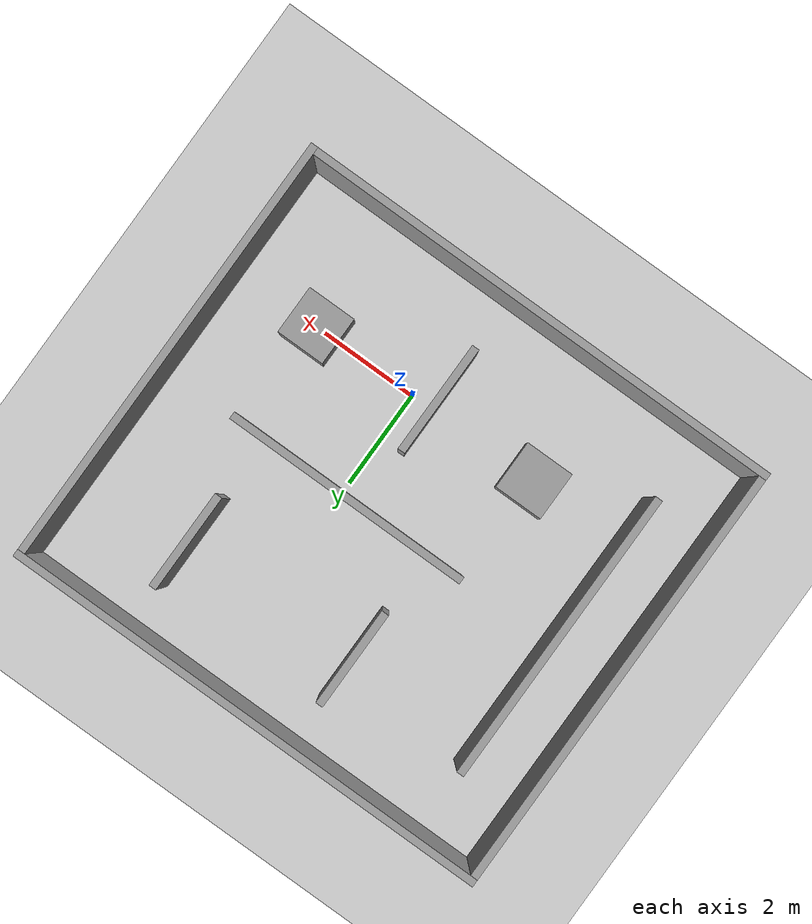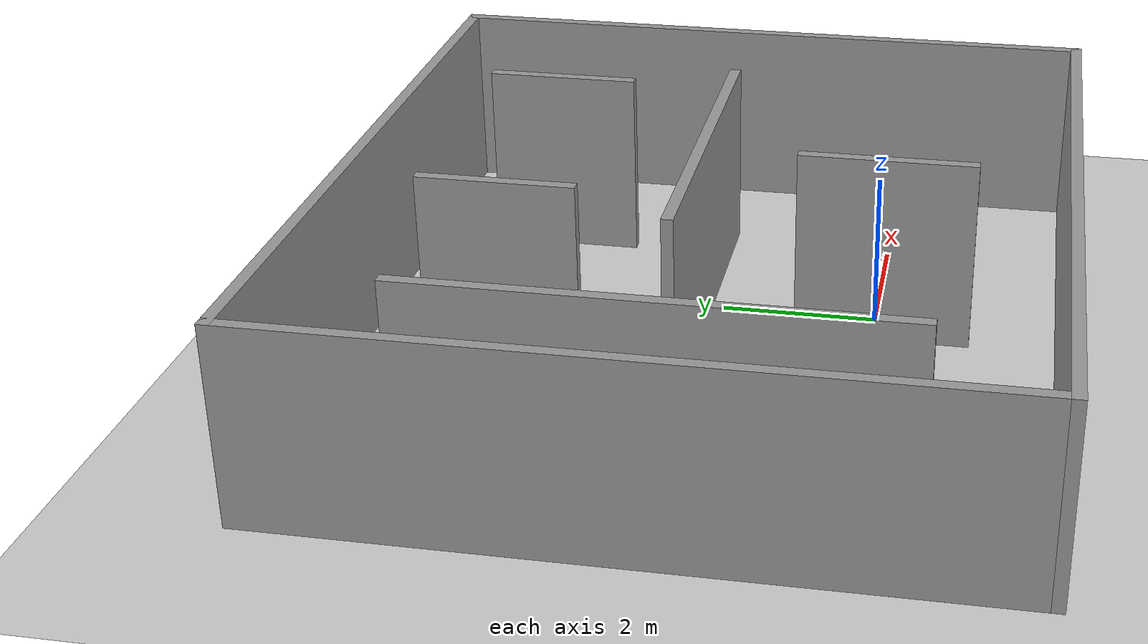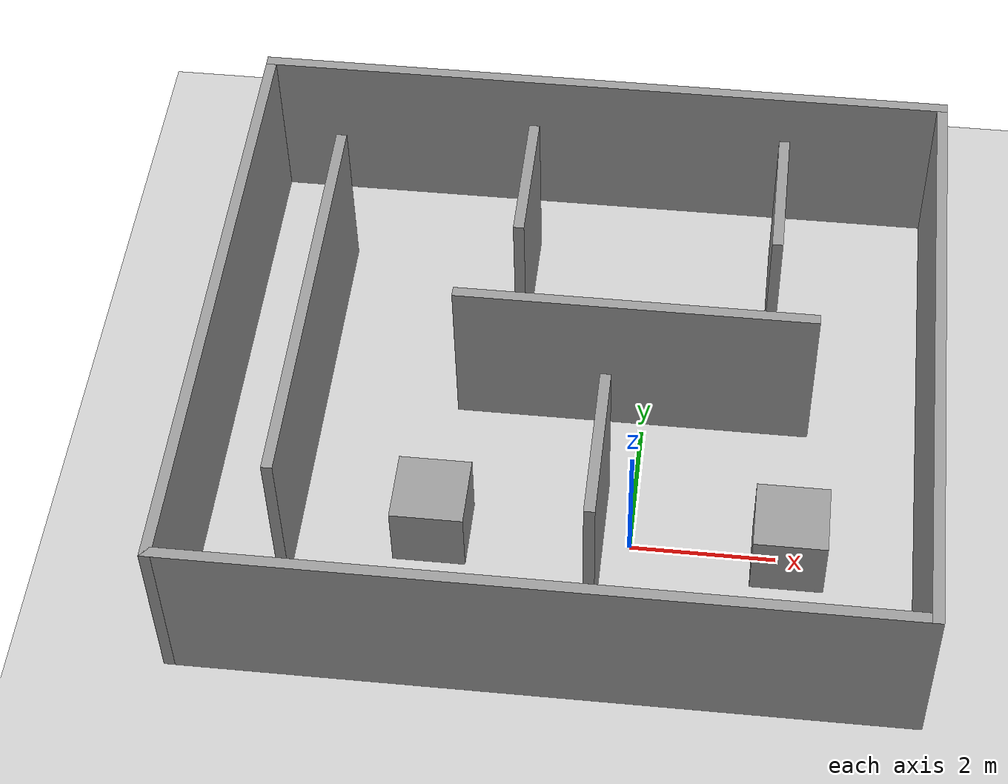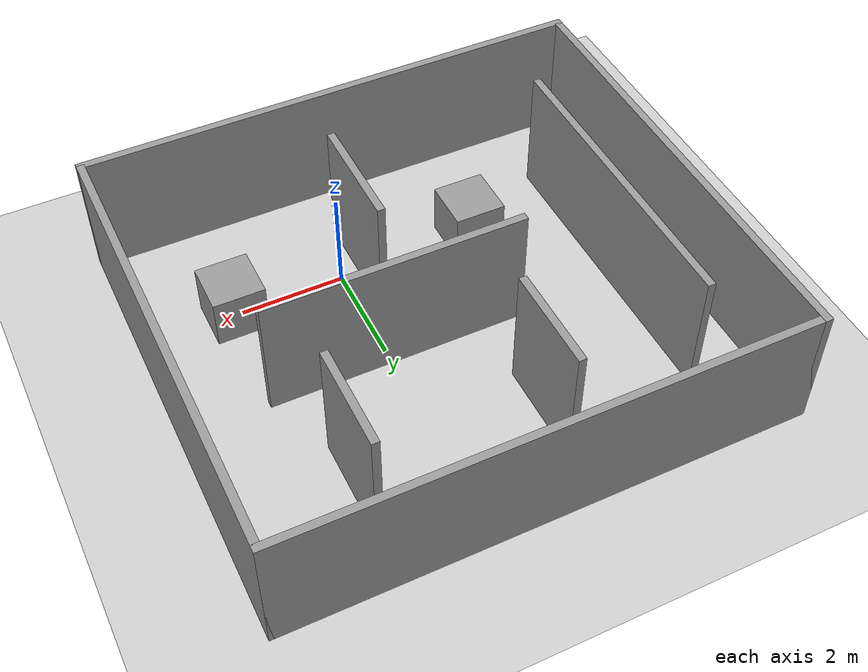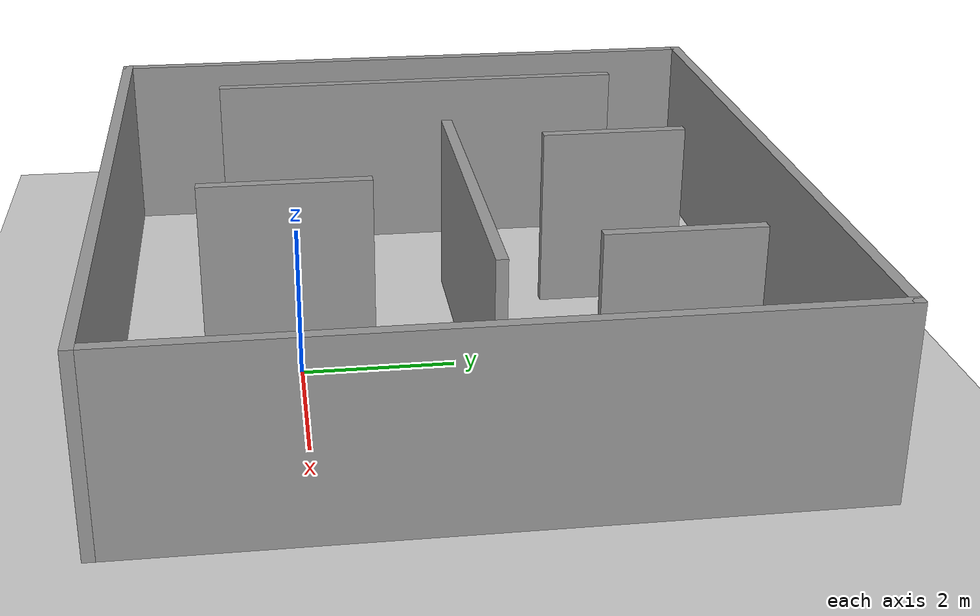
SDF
<sdf version="1.7">
 <world name="default">
  <light name="sun" type="directional">
   <pose>0 0 10 0 -0 0</pose>
   <diffuse>0.8 0.8 0.8 1</diffuse>
   <specular>0.2 0.2 0.2 1</specular>
   <attenuation>
    <range>1000</range>
    <constant>0.9</constant>
    <linear>0.01</linear>
    <quadratic>0.001</quadratic>
   </attenuation>
   <direction>-0.5 0.1 -0.9</direction>
   <spot><inner_angle>0</inner_angle><outer_angle>0</outer_angle><falloff>0</falloff></spot>
  </light>
  <model name="ground_plane">
   <static>1</static>
   <link name="link">
    <collision name="collision">
     <geometry><plane><normal>0 0 1</normal><size>100 100</size></plane></geometry>
     <surface>
      <contact><collide_bitmask>65535</collide_bitmask></contact>
      <friction><ode><mu>100</mu><mu2>50</mu2></ode></friction>
     </surface>
    </collision>
    <visual name="visual">
     <cast_shadows>0</cast_shadows>
     <geometry><plane><normal>0 0 1</normal><size>100 100</size></plane></geometry>
     <material>
      <script><uri>file://media/materials/scripts/gazebo.material</uri><name>Gazebo/Grey</name></script>
     </material>
    </visual>
   </link>
  </model>
  <gravity>0 0 -9.8</gravity>
  <magnetic_field>6e-06 2.3e-05 -4.2e-05</magnetic_field>
  <atmosphere type="adiabatic"/>
  <physics type="ode">
   <max_step_size>0.001</max_step_size>
   <real_time_factor>1</real_time_factor>
   <real_time_update_rate>1000</real_time_update_rate>
  </physics>
  <scene><ambient>0.4 0.4 0.4 1</ambient><background>0.7 0.7 0.7 1</background><shadows>1</shadows></scene>
  <audio><device>default</device></audio>
  <spherical_coordinates>
   <surface_model>EARTH_WGS84</surface_model>
   <latitude_deg>0</latitude_deg>
   <longitude_deg>0</longitude_deg>
   <elevation>0</elevation>
   <heading_deg>0</heading_deg>
  </spherical_coordinates>
  <model name="room.world">
   <pose>-0.979118 2.01635 0 0 -0 0</pose>
   <link name="Wall_10">
    <collision name="Wall_10_Collision">
     <geometry><box><size>6 0.15 2.5</size></box></geometry>
     <pose>0 0 1.25 0 -0 0</pose>
    </collision>
    <visual name="Wall_10_Visual">
     <pose>0 0 1.25 0 -0 0</pose>
     <geometry><box><size>6 0.15 2.5</size></box></geometry>
     <material>
      <script><uri>file://media/materials/scripts/gazebo.material</uri><name>Gazebo/Grey</name></script>
      <ambient>1 1 1 1</ambient>
     </material>
     <meta><layer>0</layer></meta>
    </visual>
    <pose>-3.65785 0.011596 0 0 -0 -1.5708</pose>
   </link>
   <link name="Wall_12">
    <collision name="Wall_12_Collision">
     <geometry><box><size>5 0.15 2.5</size></box></geometry>
     <pose>0 0 1.25 0 -0 0</pose>
    </collision>
    <visual name="Wall_12_Visual">
     <pose>0 0 1.25 0 -0 0</pose>
     <geometry><box><size>5 0.15 2.5</size></box></geometry>
     <material>
      <script><uri>file://media/materials/scripts/gazebo.material</uri><name>Gazebo/Grey</name></script>
      <ambient>1 1 1 1</ambient>
     </material>
     <meta><layer>0</layer></meta>
    </visual>
    <pose>0.818739 0.221263 0 0 -0 0</pose>
   </link>
   <link name="Wall_14">
    <collision name="Wall_14_Collision">
     <geometry><box><size>2.25 0.15 2.5</size></box></geometry>
     <pose>0 0 1.25 0 -0 0</pose>
    </collision>
    <visual name="Wall_14_Visual">
     <pose>0 0 1.25 0 -0 0</pose>
     <geometry><box><size>2.25 0.15 2.5</size></box></geometry>
     <material>
      <script><uri>file://media/materials/scripts/gazebo.material</uri><name>Gazebo/Grey</name></script>
      <ambient>1 1 1 1</ambient>
     </material>
     <meta><layer>0</layer></meta>
    </visual>
    <pose>0.525778 -2.13612 0 0 -0 -1.5708</pose>
   </link>
   <link name="Wall_16">
    <collision name="Wall_16_Collision">
     <geometry><box><size>2 0.15 2.5</size></box></geometry>
     <pose>0 0 1.25 0 -0 0</pose>
    </collision>
    <visual name="Wall_16_Visual">
     <pose>0 0 1.25 0 -0 0</pose>
     <geometry><box><size>2 0.15 2.5</size></box></geometry>
     <material>
      <script><uri>file://media/materials/scripts/gazebo.material</uri><name>Gazebo/Grey</name></script>
      <ambient>1 1 1 1</ambient>
     </material>
     <meta><layer>0</layer></meta>
    </visual>
    <pose>-0.922399 2.47421 0 0 -0 -1.5708</pose>
   </link>
   <link name="Wall_18">
    <collision name="Wall_18_Collision">
     <geometry><box><size>2 0.15 2.5</size></box></geometry>
     <pose>0 0 1.25 0 -0 0</pose>
    </collision>
    <visual name="Wall_18_Visual">
     <pose>0 0 1.25 0 -0 0</pose>
     <geometry><box><size>2 0.15 2.5</size></box></geometry>
     <material>
      <script><uri>file://media/materials/scripts/gazebo.material</uri><name>Gazebo/Grey</name></script>
      <ambient>1 1 1 1</ambient>
     </material>
     <meta><layer>0</layer></meta>
    </visual>
    <pose>2.67793 2.51444 0 0 -0 -1.5708</pose>
   </link>
   <link name="Wall_4">
    <collision name="Wall_4_Collision">
     <geometry><box><size>10 0.15 2.5</size></box></geometry>
     <pose>0 0 1.25 0 -0 0</pose>
    </collision>
    <visual name="Wall_4_Visual">
     <pose>0 0 1.25 0 -0 0</pose>
     <geometry><box><size>10 0.15 2.5</size></box></geometry>
     <material>
      <script><uri>file://media/materials/scripts/gazebo.material</uri><name>Gazebo/Grey</name></script>
      <ambient>1 1 1 1</ambient>
     </material>
     <meta><layer>0</layer></meta>
    </visual>
    <pose>-0 4.425 0 0 -0 0</pose>
   </link>
   <link name="Wall_5">
    <collision name="Wall_5_Collision">
     <geometry><box><size>9 0.15 2.5</size></box></geometry>
     <pose>0 0 1.25 0 -0 0</pose>
    </collision>
    <visual name="Wall_5_Visual">
     <pose>0 0 1.25 0 -0 0</pose>
     <geometry><box><size>9 0.15 2.5</size></box></geometry>
     <material>
      <script><uri>file://media/materials/scripts/gazebo.material</uri><name>Gazebo/Grey</name></script>
      <ambient>1 1 1 1</ambient>
     </material>
     <meta><layer>0</layer></meta>
    </visual>
    <pose>4.925 0 0 0 -0 -1.5708</pose>
   </link>
   <link name="Wall_6">
    <collision name="Wall_6_Collision">
     <geometry><box><size>10 0.15 2.5</size></box></geometry>
     <pose>0 0 1.25 0 -0 0</pose>
    </collision>
    <visual name="Wall_6_Visual">
     <pose>0 0 1.25 0 -0 0</pose>
     <geometry><box><size>10 0.15 2.5</size></box></geometry>
     <material>
      <script><uri>file://media/materials/scripts/gazebo.material</uri><name>Gazebo/Grey</name></script>
      <ambient>1 1 1 1</ambient>
     </material>
     <meta><layer>0</layer></meta>
    </visual>
    <pose>-0 -4.425 0 0 -0 3.14159</pose>
   </link>
   <link name="Wall_7">
    <collision name="Wall_7_Collision">
     <geometry><box><size>9 0.15 2.5</size></box></geometry>
     <pose>0 0 1.25 0 -0 0</pose>
    </collision>
    <visual name="Wall_7_Visual">
     <pose>0 0 1.25 0 -0 0</pose>
     <geometry><box><size>9 0.15 2.5</size></box></geometry>
     <material>
      <script><uri>file://media/materials/scripts/gazebo.material</uri><name>Gazebo/Grey</name></script>
      <ambient>1 1 1 1</ambient>
     </material>
     <meta><layer>0</layer></meta>
    </visual>
    <pose>-4.925 0 0 0 -0 1.5708</pose>
   </link>
   <static>1</static>
  </model>
  <model name="unit_box">
   <pose>2.1612 0.024622 0.5 0 -0 0</pose>
   <link name="link">
    <inertial>
     <mass>1</mass>
     <inertia>
      <ixx>0.166667</ixx>
      <ixy>0</ixy>
      <ixz>0</ixz>
      <iyy>0.166667</iyy>
      <iyz>0</iyz>
      <izz>0.166667</izz>
     </inertia>
    </inertial>
    <collision name="collision"><geometry><box><size>1 1 1</size></box></geometry></collision>
    <visual name="visual">
     <geometry><box><size>1 1 1</size></box></geometry>
     <material>
      <script><name>Gazebo/Grey</name><uri>file://media/materials/scripts/gazebo.material</uri></script>
     </material>
    </visual>
   </link>
  </model>
  <model name="unit_box_0">
   <pose>-2.71699 -0.003421 0.5 0 -0 0</pose>
   <link name="link">
    <inertial>
     <mass>1</mass>
     <inertia>
      <ixx>0.166667</ixx>
      <ixy>0</ixy>
      <ixz>0</ixz>
      <iyy>0.166667</iyy>
      <iyz>0</iyz>
      <izz>0.166667</izz>
     </inertia>
    </inertial>
    <collision name="collision"><geometry><box><size>1 1 1</size></box></geometry></collision>
    <visual name="visual">
     <geometry><box><size>1 1 1</size></box></geometry>
     <material>
      <script><name>Gazebo/Grey</name><uri>file://media/materials/scripts/gazebo.material</uri></script>
     </material>
    </visual>
   </link>
  </model>
 </world>
</sdf>
